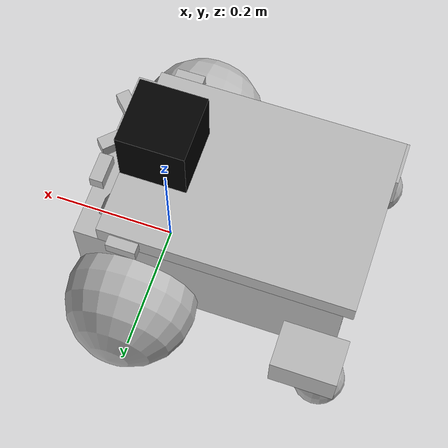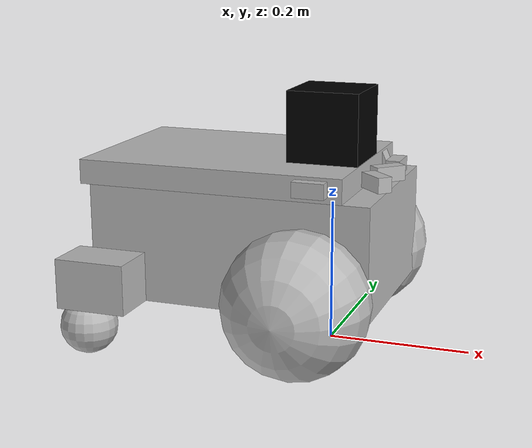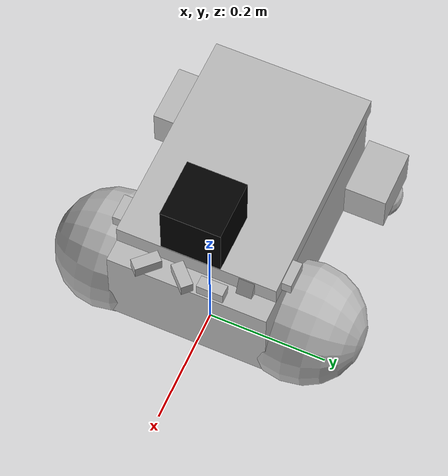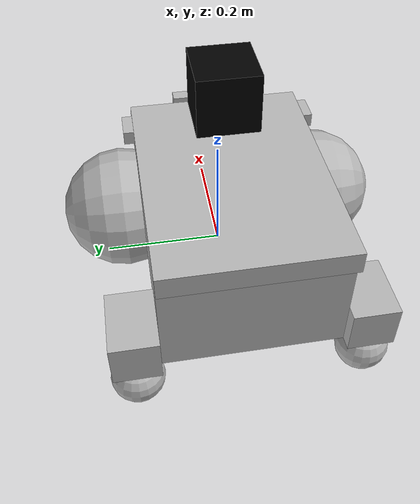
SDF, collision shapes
<?xml version='1.0'?>
<sdf version='1.7'>
  <model name='TinyBot_camera_friction'>
    <link name='base_footprint'>
      <pose>0 0 0 0 -0 0</pose>
      <inertial>
        <pose>-0.15 0 0.13 0 -0 0</pose>
        <mass>7</mass>
        <inertia>
          <ixx>0.0594508</ixx>
          <ixy>0</ixy>
          <ixz>-2.77556e-17</ixz>
          <iyy>0.150753</iyy>
          <iyz>0</iyz>
          <izz>0.172704</izz>
        </inertia>
      </inertial>
      <velocity_decay/>
      <velocity_decay/>
      <velocity_decay/>
      <velocity_decay/>
      <self_collide>0</self_collide>
      <enable_wind>0</enable_wind>
      <kinematic>0</kinematic>
      <visual name='base_footprint_fixed_joint_lump__base_link_visual_2'>
        <pose>-0.279 -0.17 0.09 0 -0 -3.14159</pose>
        <geometry>
          <mesh>
            <scale>1 1 1</scale>
            <uri>https://fuel.ignitionrobotics.org/1.0/openrobotics/models/tinybot/1/files/meshes/caster_wheel.dae</uri>
          </mesh>
        </geometry>
        <material>
          <shader type='pixel'/>
          <emissive>0 0 0 1</emissive>
        </material>
        <transparency>0</transparency>
        <cast_shadows>1</cast_shadows>
      </visual>
      <visual name='base_footprint_fixed_joint_lump__base_link_visual_1'>
        <pose>-0.279 0.17 0.09 0 -0 -3.14159</pose>
        <geometry>
          <mesh>
            <scale>1 1 1</scale>
            <uri>https://fuel.ignitionrobotics.org/1.0/openrobotics/models/tinybot/1/files/meshes/caster_wheel.dae</uri>
          </mesh>
        </geometry>
        <material>
          <shader type='pixel'/>
          <emissive>0 0 0 1</emissive>
        </material>
        <transparency>0</transparency>
        <cast_shadows>1</cast_shadows>
      </visual>
      <visual name='base_footprint_fixed_joint_lump__base_link_visual'>
        <pose>-0.11 0 0.071 0 -0 0</pose>
        <geometry>
          <mesh>
            <scale>1 1 1</scale>
            <uri>https://fuel.ignitionrobotics.org/1.0/openrobotics/models/tinybot/1/files/meshes/TinyBot_body.dae</uri>
          </mesh>
        </geometry>
        <material>
          <shader type='pixel'/>
          <emissive>0 0 0 1</emissive>
        </material>
        <transparency>0</transparency>
        <cast_shadows>1</cast_shadows>
      </visual>
      <collision name='base_footprint_fixed_joint_lump__left_caster_wheel_collision_4'>
        <laser_retro>0</laser_retro>
        <max_contacts>10</max_contacts>
        <pose>-0.3 0.169 0.04 0 -0 0</pose>
        <geometry>
          <sphere>
            <radius>0.04</radius>
          </sphere>
        </geometry>
        <surface>
          <friction>
            <ode>
              <mu>0</mu>
              <mu2>0</mu2>
              <fdir1>0 0 0</fdir1>
              <slip1>0</slip1>
              <slip2>0</slip2>
            </ode>
            <torsional>
              <coefficient>1</coefficient>
              <patch_radius>0</patch_radius>
              <surface_radius>0</surface_radius>
              <use_patch_radius>1</use_patch_radius>
              <ode>
                <slip>0</slip>
              </ode>
            </torsional>
          </friction>
          <bounce>
            <restitution_coefficient>0</restitution_coefficient>
            <threshold>1e+06</threshold>
          </bounce>
          <contact>
            <collide_without_contact>0</collide_without_contact>
            <collide_without_contact_bitmask>1</collide_without_contact_bitmask>
            <collide_bitmask>1</collide_bitmask>
            <ode>
              <soft_cfm>0</soft_cfm>
              <soft_erp>0.2</soft_erp>
              <kp>1e+08</kp>
              <kd>1</kd>
              <max_vel>0.01</max_vel>
              <min_depth>0.005</min_depth>
            </ode>
            <bullet>
              <split_impulse>1</split_impulse>
              <split_impulse_penetration_threshold>-0.01</split_impulse_penetration_threshold>
              <soft_cfm>0</soft_cfm>
              <soft_erp>0.2</soft_erp>
              <kp>1e+08</kp>
              <kd>1</kd>
            </bullet>
          </contact>
        </surface>
      </collision>
      <collision name='base_footprint_fixed_joint_lump__sonar_3_collision_10'>
        <laser_retro>0</laser_retro>
        <max_contacts>10</max_contacts>
        <pose>0.08 0.04 0.25 0 -0 0</pose>
        <geometry>
          <box>
            <size>0.02 0.044 0.021</size>
          </box>
        </geometry>
        <surface>
          <friction>
            <ode>
              <mu>1</mu>
              <mu2>1</mu2>
              <fdir1>0 0 0</fdir1>
              <slip1>0</slip1>
              <slip2>0</slip2>
            </ode>
            <torsional>
              <coefficient>1</coefficient>
              <patch_radius>0</patch_radius>
              <surface_radius>0</surface_radius>
              <use_patch_radius>1</use_patch_radius>
              <ode>
                <slip>0</slip>
              </ode>
            </torsional>
          </friction>
          <bounce>
            <restitution_coefficient>0</restitution_coefficient>
            <threshold>1e+06</threshold>
          </bounce>
          <contact>
            <collide_without_contact>0</collide_without_contact>
            <collide_without_contact_bitmask>1</collide_without_contact_bitmask>
            <collide_bitmask>1</collide_bitmask>
            <ode>
              <soft_cfm>0</soft_cfm>
              <soft_erp>0.2</soft_erp>
              <kp>1e+13</kp>
              <kd>1</kd>
              <max_vel>0.01</max_vel>
              <min_depth>0</min_depth>
            </ode>
            <bullet>
              <split_impulse>1</split_impulse>
              <split_impulse_penetration_threshold>-0.01</split_impulse_penetration_threshold>
              <soft_cfm>0</soft_cfm>
              <soft_erp>0.2</soft_erp>
              <kp>1e+13</kp>
              <kd>1</kd>
            </bullet>
          </contact>
        </surface>
      </collision>
      <collision name='base_footprint_fixed_joint_lump__sonar_2_collision_9'>
        <laser_retro>0</laser_retro>
        <max_contacts>10</max_contacts>
        <pose>0.08 -0.01 0.25 0 0 -0.785</pose>
        <geometry>
          <box>
            <size>0.02 0.044 0.021</size>
          </box>
        </geometry>
        <surface>
          <friction>
            <ode>
              <mu>1</mu>
              <mu2>1</mu2>
              <fdir1>0 0 0</fdir1>
              <slip1>0</slip1>
              <slip2>0</slip2>
            </ode>
            <torsional>
              <coefficient>1</coefficient>
              <patch_radius>0</patch_radius>
              <surface_radius>0</surface_radius>
              <use_patch_radius>1</use_patch_radius>
              <ode>
                <slip>0</slip>
              </ode>
            </torsional>
          </friction>
          <bounce>
            <restitution_coefficient>0</restitution_coefficient>
            <threshold>1e+06</threshold>
          </bounce>
          <contact>
            <collide_without_contact>0</collide_without_contact>
            <collide_without_contact_bitmask>1</collide_without_contact_bitmask>
            <collide_bitmask>1</collide_bitmask>
            <ode>
              <soft_cfm>0</soft_cfm>
              <soft_erp>0.2</soft_erp>
              <kp>1e+13</kp>
              <kd>1</kd>
              <max_vel>0.01</max_vel>
              <min_depth>0</min_depth>
            </ode>
            <bullet>
              <split_impulse>1</split_impulse>
              <split_impulse_penetration_threshold>-0.01</split_impulse_penetration_threshold>
              <soft_cfm>0</soft_cfm>
              <soft_erp>0.2</soft_erp>
              <kp>1e+13</kp>
              <kd>1</kd>
            </bullet>
          </contact>
        </surface>
      </collision>
      <collision name='base_footprint_fixed_joint_lump__base_link_collision'>
        <laser_retro>0</laser_retro>
        <max_contacts>10</max_contacts>
        <pose>-0.11 0 0.151 0 -0 0</pose>
        <geometry>
          <box>
            <size>0.398 0.268 0.16</size>
          </box>
        </geometry>
        <surface>
          <friction>
            <ode>
              <mu>1</mu>
              <mu2>1</mu2>
              <fdir1>0 0 0</fdir1>
              <slip1>0</slip1>
              <slip2>0</slip2>
            </ode>
            <torsional>
              <coefficient>1</coefficient>
              <patch_radius>0</patch_radius>
              <surface_radius>0</surface_radius>
              <use_patch_radius>1</use_patch_radius>
              <ode>
                <slip>0</slip>
              </ode>
            </torsional>
          </friction>
          <bounce>
            <restitution_coefficient>0</restitution_coefficient>
            <threshold>1e+06</threshold>
          </bounce>
          <contact>
            <collide_without_contact>0</collide_without_contact>
            <collide_without_contact_bitmask>1</collide_without_contact_bitmask>
            <collide_bitmask>1</collide_bitmask>
            <ode>
              <soft_cfm>0</soft_cfm>
              <soft_erp>0.2</soft_erp>
              <kp>1e+13</kp>
              <kd>1</kd>
              <max_vel>0.01</max_vel>
              <min_depth>0</min_depth>
            </ode>
            <bullet>
              <split_impulse>1</split_impulse>
              <split_impulse_penetration_threshold>-0.01</split_impulse_penetration_threshold>
              <soft_cfm>0</soft_cfm>
              <soft_erp>0.2</soft_erp>
              <kp>1e+13</kp>
              <kd>1</kd>
            </bullet>
          </contact>
        </surface>
      </collision>
      <collision name='base_footprint_fixed_joint_lump__base_link_collision_2'>
        <laser_retro>0</laser_retro>
        <max_contacts>10</max_contacts>
        <pose>-0.279 0.169 0.106 0 -0 0</pose>
        <geometry>
          <box>
            <size>0.1 0.07 0.07</size>
          </box>
        </geometry>
        <surface>
          <friction>
            <ode>
              <mu>1</mu>
              <mu2>1</mu2>
              <fdir1>0 0 0</fdir1>
              <slip1>0</slip1>
              <slip2>0</slip2>
            </ode>
            <torsional>
              <coefficient>1</coefficient>
              <patch_radius>0</patch_radius>
              <surface_radius>0</surface_radius>
              <use_patch_radius>1</use_patch_radius>
              <ode>
                <slip>0</slip>
              </ode>
            </torsional>
          </friction>
          <bounce>
            <restitution_coefficient>0</restitution_coefficient>
            <threshold>1e+06</threshold>
          </bounce>
          <contact>
            <collide_without_contact>0</collide_without_contact>
            <collide_without_contact_bitmask>1</collide_without_contact_bitmask>
            <collide_bitmask>1</collide_bitmask>
            <ode>
              <soft_cfm>0</soft_cfm>
              <soft_erp>0.2</soft_erp>
              <kp>1e+13</kp>
              <kd>1</kd>
              <max_vel>0.01</max_vel>
              <min_depth>0</min_depth>
            </ode>
            <bullet>
              <split_impulse>1</split_impulse>
              <split_impulse_penetration_threshold>-0.01</split_impulse_penetration_threshold>
              <soft_cfm>0</soft_cfm>
              <soft_erp>0.2</soft_erp>
              <kp>1e+13</kp>
              <kd>1</kd>
            </bullet>
          </contact>
        </surface>
      </collision>
      <collision name='base_footprint_fixed_joint_lump__sonar_0_collision_7'>
        <laser_retro>0</laser_retro>
        <max_contacts>10</max_contacts>
        <pose>0.01 -0.14 0.25 0 0 -1.5708</pose>
        <geometry>
          <box>
            <size>0.02 0.044 0.021</size>
          </box>
        </geometry>
        <surface>
          <friction>
            <ode>
              <mu>1</mu>
              <mu2>1</mu2>
              <fdir1>0 0 0</fdir1>
              <slip1>0</slip1>
              <slip2>0</slip2>
            </ode>
            <torsional>
              <coefficient>1</coefficient>
              <patch_radius>0</patch_radius>
              <surface_radius>0</surface_radius>
              <use_patch_radius>1</use_patch_radius>
              <ode>
                <slip>0</slip>
              </ode>
            </torsional>
          </friction>
          <bounce>
            <restitution_coefficient>0</restitution_coefficient>
            <threshold>1e+06</threshold>
          </bounce>
          <contact>
            <collide_without_contact>0</collide_without_contact>
            <collide_without_contact_bitmask>1</collide_without_contact_bitmask>
            <collide_bitmask>1</collide_bitmask>
            <ode>
              <soft_cfm>0</soft_cfm>
              <soft_erp>0.2</soft_erp>
              <kp>1e+13</kp>
              <kd>1</kd>
              <max_vel>0.01</max_vel>
              <min_depth>0</min_depth>
            </ode>
            <bullet>
              <split_impulse>1</split_impulse>
              <split_impulse_penetration_threshold>-0.01</split_impulse_penetration_threshold>
              <soft_cfm>0</soft_cfm>
              <soft_erp>0.2</soft_erp>
              <kp>1e+13</kp>
              <kd>1</kd>
            </bullet>
          </contact>
        </surface>
      </collision>
      <collision name='base_footprint_fixed_joint_lump__right_caster_wheel_collision_6'>
        <laser_retro>0</laser_retro>
        <max_contacts>10</max_contacts>
        <pose>-0.3 -0.169 0.04 0 -0 0</pose>
        <geometry>
          <sphere>
            <radius>0.04</radius>
          </sphere>
        </geometry>
        <surface>
          <friction>
            <ode>
              <mu>0</mu>
              <mu2>0</mu2>
              <fdir1>0 0 0</fdir1>
              <slip1>0</slip1>
              <slip2>0</slip2>
            </ode>
            <torsional>
              <coefficient>1</coefficient>
              <patch_radius>0</patch_radius>
              <surface_radius>0</surface_radius>
              <use_patch_radius>1</use_patch_radius>
              <ode>
                <slip>0</slip>
              </ode>
            </torsional>
          </friction>
          <bounce>
            <restitution_coefficient>0</restitution_coefficient>
            <threshold>1e+06</threshold>
          </bounce>
          <contact>
            <collide_without_contact>0</collide_without_contact>
            <collide_without_contact_bitmask>1</collide_without_contact_bitmask>
            <collide_bitmask>1</collide_bitmask>
            <ode>
              <soft_cfm>0</soft_cfm>
              <soft_erp>0.2</soft_erp>
              <kp>1e+08</kp>
              <kd>1</kd>
              <max_vel>0.01</max_vel>
              <min_depth>0.005</min_depth>
            </ode>
            <bullet>
              <split_impulse>1</split_impulse>
              <split_impulse_penetration_threshold>-0.01</split_impulse_penetration_threshold>
              <soft_cfm>0</soft_cfm>
              <soft_erp>0.2</soft_erp>
              <kp>1e+08</kp>
              <kd>1</kd>
            </bullet>
          </contact>
        </surface>
      </collision>
      <collision name='base_footprint_fixed_joint_lump__base_link_collision_1'>
        <laser_retro>0</laser_retro>
        <max_contacts>10</max_contacts>
        <pose>-0.136 0 0.248 0 -0 0</pose>
        <geometry>
          <box>
            <size>0.375 0.268 0.034</size>
          </box>
        </geometry>
        <surface>
          <friction>
            <ode>
              <mu>1</mu>
              <mu2>1</mu2>
              <fdir1>0 0 0</fdir1>
              <slip1>0</slip1>
              <slip2>0</slip2>
            </ode>
            <torsional>
              <coefficient>1</coefficient>
              <patch_radius>0</patch_radius>
              <surface_radius>0</surface_radius>
              <use_patch_radius>1</use_patch_radius>
              <ode>
                <slip>0</slip>
              </ode>
            </torsional>
          </friction>
          <bounce>
            <restitution_coefficient>0</restitution_coefficient>
            <threshold>1e+06</threshold>
          </bounce>
          <contact>
            <collide_without_contact>0</collide_without_contact>
            <collide_without_contact_bitmask>1</collide_without_contact_bitmask>
            <collide_bitmask>1</collide_bitmask>
            <ode>
              <soft_cfm>0</soft_cfm>
              <soft_erp>0.2</soft_erp>
              <kp>1e+13</kp>
              <kd>1</kd>
              <max_vel>0.01</max_vel>
              <min_depth>0</min_depth>
            </ode>
            <bullet>
              <split_impulse>1</split_impulse>
              <split_impulse_penetration_threshold>-0.01</split_impulse_penetration_threshold>
              <soft_cfm>0</soft_cfm>
              <soft_erp>0.2</soft_erp>
              <kp>1e+13</kp>
              <kd>1</kd>
            </bullet>
          </contact>
        </surface>
      </collision>
      <collision name='base_footprint_fixed_joint_lump__sonar_4_collision_11'>
        <laser_retro>0</laser_retro>
        <max_contacts>10</max_contacts>
        <pose>0.01 0.14 0.25 0 -0 1.5708</pose>
        <geometry>
          <box>
            <size>0.02 0.044 0.021</size>
          </box>
        </geometry>
        <surface>
          <friction>
            <ode>
              <mu>1</mu>
              <mu2>1</mu2>
              <fdir1>0 0 0</fdir1>
              <slip1>0</slip1>
              <slip2>0</slip2>
            </ode>
            <torsional>
              <coefficient>1</coefficient>
              <patch_radius>0</patch_radius>
              <surface_radius>0</surface_radius>
              <use_patch_radius>1</use_patch_radius>
              <ode>
                <slip>0</slip>
              </ode>
            </torsional>
          </friction>
          <bounce>
            <restitution_coefficient>0</restitution_coefficient>
            <threshold>1e+06</threshold>
          </bounce>
          <contact>
            <collide_without_contact>0</collide_without_contact>
            <collide_without_contact_bitmask>1</collide_without_contact_bitmask>
            <collide_bitmask>1</collide_bitmask>
            <ode>
              <soft_cfm>0</soft_cfm>
              <soft_erp>0.2</soft_erp>
              <kp>1e+13</kp>
              <kd>1</kd>
              <max_vel>0.01</max_vel>
              <min_depth>0</min_depth>
            </ode>
            <bullet>
              <split_impulse>1</split_impulse>
              <split_impulse_penetration_threshold>-0.01</split_impulse_penetration_threshold>
              <soft_cfm>0</soft_cfm>
              <soft_erp>0.2</soft_erp>
              <kp>1e+13</kp>
              <kd>1</kd>
            </bullet>
          </contact>
        </surface>
      </collision>
      <collision name='base_footprint_fixed_joint_lump__base_link_collision_3'>
        <laser_retro>0</laser_retro>
        <max_contacts>10</max_contacts>
        <pose>-0.279 -0.169 0.106 0 -0 0</pose>
        <geometry>
          <box>
            <size>0.1 0.07 0.07</size>
          </box>
        </geometry>
        <surface>
          <friction>
            <ode>
              <mu>1</mu>
              <mu2>1</mu2>
              <fdir1>0 0 0</fdir1>
              <slip1>0</slip1>
              <slip2>0</slip2>
            </ode>
            <torsional>
              <coefficient>1</coefficient>
              <patch_radius>0</patch_radius>
              <surface_radius>0</surface_radius>
              <use_patch_radius>1</use_patch_radius>
              <ode>
                <slip>0</slip>
              </ode>
            </torsional>
          </friction>
          <bounce>
            <restitution_coefficient>0</restitution_coefficient>
            <threshold>1e+06</threshold>
          </bounce>
          <contact>
            <collide_without_contact>0</collide_without_contact>
            <collide_without_contact_bitmask>1</collide_without_contact_bitmask>
            <collide_bitmask>1</collide_bitmask>
            <ode>
              <soft_cfm>0</soft_cfm>
              <soft_erp>0.2</soft_erp>
              <kp>1e+13</kp>
              <kd>1</kd>
              <max_vel>0.01</max_vel>
              <min_depth>0</min_depth>
            </ode>
            <bullet>
              <split_impulse>1</split_impulse>
              <split_impulse_penetration_threshold>-0.01</split_impulse_penetration_threshold>
              <soft_cfm>0</soft_cfm>
              <soft_erp>0.2</soft_erp>
              <kp>1e+13</kp>
              <kd>1</kd>
            </bullet>
          </contact>
        </surface>
      </collision>
      <collision name='base_footprint_fixed_joint_lump__sonar_1_collision_8'>
        <laser_retro>0</laser_retro>
        <max_contacts>10</max_contacts>
        <pose>0.08 -0.07 0.25 0 -0 0.785</pose>
        <geometry>
          <box>
            <size>0.02 0.044 0.021</size>
          </box>
        </geometry>
        <surface>
          <friction>
            <ode>
              <mu>1</mu>
              <mu2>1</mu2>
              <fdir1>0 0 0</fdir1>
              <slip1>0</slip1>
              <slip2>0</slip2>
            </ode>
            <torsional>
              <coefficient>1</coefficient>
              <patch_radius>0</patch_radius>
              <surface_radius>0</surface_radius>
              <use_patch_radius>1</use_patch_radius>
              <ode>
                <slip>0</slip>
              </ode>
            </torsional>
          </friction>
          <bounce>
            <restitution_coefficient>0</restitution_coefficient>
            <threshold>1e+06</threshold>
          </bounce>
          <contact>
            <collide_without_contact>0</collide_without_contact>
            <collide_without_contact_bitmask>1</collide_without_contact_bitmask>
            <collide_bitmask>1</collide_bitmask>
            <ode>
              <soft_cfm>0</soft_cfm>
              <soft_erp>0.2</soft_erp>
              <kp>1e+13</kp>
              <kd>1</kd>
              <max_vel>0.01</max_vel>
              <min_depth>0</min_depth>
            </ode>
            <bullet>
              <split_impulse>1</split_impulse>
              <split_impulse_penetration_threshold>-0.01</split_impulse_penetration_threshold>
              <soft_cfm>0</soft_cfm>
              <soft_erp>0.2</soft_erp>
              <kp>1e+13</kp>
              <kd>1</kd>
            </bullet>
          </contact>
        </surface>
      </collision>
      <collision name='base_footprint_fixed_joint_lump__raspicam_collision_5'>
        <laser_retro>0</laser_retro>
        <max_contacts>10</max_contacts>
        <pose>0.05 0.085 0.245 0 -1.15192 3.1415</pose>
        <geometry>
          <box>
            <size>0.03 0.026 0.016</size>
          </box>
        </geometry>
        <surface>
          <friction>
            <ode>
              <mu>1</mu>
              <mu2>1</mu2>
              <fdir1>0 0 0</fdir1>
              <slip1>0</slip1>
              <slip2>0</slip2>
            </ode>
            <torsional>
              <coefficient>1</coefficient>
              <patch_radius>0</patch_radius>
              <surface_radius>0</surface_radius>
              <use_patch_radius>1</use_patch_radius>
              <ode>
                <slip>0</slip>
              </ode>
            </torsional>
          </friction>
          <bounce>
            <restitution_coefficient>0</restitution_coefficient>
            <threshold>1e+06</threshold>
          </bounce>
          <contact>
            <collide_without_contact>0</collide_without_contact>
            <collide_without_contact_bitmask>1</collide_without_contact_bitmask>
            <collide_bitmask>1</collide_bitmask>
            <ode>
              <soft_cfm>0</soft_cfm>
              <soft_erp>0.2</soft_erp>
              <kp>1e+13</kp>
              <kd>1</kd>
              <max_vel>0.01</max_vel>
              <min_depth>0</min_depth>
            </ode>
            <bullet>
              <split_impulse>1</split_impulse>
              <split_impulse_penetration_threshold>-0.01</split_impulse_penetration_threshold>
              <soft_cfm>0</soft_cfm>
              <soft_erp>0.2</soft_erp>
              <kp>1e+13</kp>
              <kd>1</kd>
            </bullet>
          </contact>
        </surface>
      </collision>
    </link>
    <link name='left_wheel'>
      <pose>-0 0.163 0.1 0 -0 1.5708</pose>
      <inertial>
        <pose>0 0 0 3.14159 1.57079 3.14159</pose>
        <mass>3.34</mass>
        <inertia>
          <ixx>0.00904583</ixx>
          <ixy>0</ixy>
          <ixz>0</ixz>
          <iyy>0.00904583</iyy>
          <iyz>0</iyz>
          <izz>0.0167</izz>
        </inertia>
      </inertial>
      <gravity>1</gravity>
      <velocity_decay/>
      <self_collide>0</self_collide>
      <enable_wind>0</enable_wind>
      <kinematic>0</kinematic>
      <visual name='left_wheel_visual'>
        <pose>-0.071 0 0 0 -0 0</pose>
        <geometry>
          <mesh>
            <scale>1 1 1</scale>
            <uri>https://fuel.ignitionrobotics.org/1.0/openrobotics/models/tinybot/1/files/meshes/front_wheel.dae</uri>
          </mesh>
        </geometry>
        <material>
          <shader type='pixel'/>
          <emissive>0 0 0 1</emissive>
        </material>
        <transparency>0</transparency>
        <cast_shadows>1</cast_shadows>
      </visual>
      <collision name='left_wheel_collision'>
        <laser_retro>0</laser_retro>
        <max_contacts>10</max_contacts>
        <pose>0 0 0 3.14159 1.57079 3.14159</pose>
        <geometry>
          <sphere>
            <radius>0.1</radius>
          </sphere>
        </geometry>
        <surface>
          <friction>
            <ode>
              <mu>1</mu>
              <mu2>1</mu2>
              <fdir1>0 0 1</fdir1>
              <slip1>0</slip1>
              <slip2>0</slip2>
            </ode>
            <torsional>
              <coefficient>1</coefficient>
              <patch_radius>0</patch_radius>
              <surface_radius>0</surface_radius>
              <use_patch_radius>1</use_patch_radius>
              <ode>
                <slip>0</slip>
              </ode>
            </torsional>
          </friction>
          <bounce>
            <restitution_coefficient>0</restitution_coefficient>
            <threshold>1e+06</threshold>
          </bounce>
          <contact>
            <collide_without_contact>0</collide_without_contact>
            <collide_without_contact_bitmask>1</collide_without_contact_bitmask>
            <collide_bitmask>1</collide_bitmask>
            <ode>
              <soft_cfm>0</soft_cfm>
              <soft_erp>0.2</soft_erp>
              <kp>1e+07</kp>
              <kd>1</kd>
              <max_vel>0.01</max_vel>
              <min_depth>0</min_depth>
            </ode>
            <bullet>
              <split_impulse>1</split_impulse>
              <split_impulse_penetration_threshold>-0.01</split_impulse_penetration_threshold>
              <soft_cfm>0</soft_cfm>
              <soft_erp>0.2</soft_erp>
              <kp>1e+07</kp>
              <kd>1</kd>
            </bullet>
          </contact>
        </surface>
      </collision>
    </link>
    <link name='right_wheel'>
      <pose>1e-06 -0.163 0.1 0 -0 1.5708</pose>
      <inertial>
        <pose>0 0 0 3.14159 1.57079 3.14159</pose>
        <mass>3.34</mass>
        <inertia>
          <ixx>0.00904583</ixx>
          <ixy>0</ixy>
          <ixz>0</ixz>
          <iyy>0.00904583</iyy>
          <iyz>0</iyz>
          <izz>0.0167</izz>
        </inertia>
      </inertial>
      <gravity>1</gravity>
      <velocity_decay/>
      <self_collide>0</self_collide>
      <enable_wind>0</enable_wind>
      <kinematic>0</kinematic>
      <visual name='right_wheel_visual'>
        <pose>0.071 0 0 -3.14159 -0 -3.14159</pose>
        <geometry>
          <mesh>
            <scale>1 1 1</scale>
            <uri>https://fuel.ignitionrobotics.org/1.0/openrobotics/models/tinybot/1/files/meshes/front_wheel.dae</uri>
          </mesh>
        </geometry>
        <material>
          <shader type='pixel'/>
        </material>
        <transparency>0</transparency>
        <cast_shadows>1</cast_shadows>
      </visual>
      <collision name='right_wheel_collision'>
        <laser_retro>0</laser_retro>
        <max_contacts>10</max_contacts>
        <pose>0 0 0 3.14159 1.57079 3.14159</pose>
        <geometry>
          <sphere>
            <radius>0.1</radius>
          </sphere>
        </geometry>
        <surface>
          <friction>
            <ode>
              <mu>1</mu>
              <mu2>1</mu2>
              <fdir1>0 0 1</fdir1>
              <slip1>0</slip1>
              <slip2>0</slip2>
            </ode>
            <torsional>
              <coefficient>1</coefficient>
              <patch_radius>0</patch_radius>
              <surface_radius>0</surface_radius>
              <use_patch_radius>1</use_patch_radius>
              <ode>
                <slip>0</slip>
              </ode>
            </torsional>
          </friction>
          <bounce>
            <restitution_coefficient>0</restitution_coefficient>
            <threshold>1e+06</threshold>
          </bounce>
          <contact>
            <collide_without_contact>0</collide_without_contact>
            <collide_without_contact_bitmask>1</collide_without_contact_bitmask>
            <collide_bitmask>1</collide_bitmask>
            <ode>
              <soft_cfm>0</soft_cfm>
              <soft_erp>0.2</soft_erp>
              <kp>1e+07</kp>
              <kd>1</kd>
              <max_vel>0.01</max_vel>
              <min_depth>0</min_depth>
            </ode>
            <bullet>
              <split_impulse>1</split_impulse>
              <split_impulse_penetration_threshold>-0.01</split_impulse_penetration_threshold>
              <soft_cfm>0</soft_cfm>
              <soft_erp>0.2</soft_erp>
              <kp>1e+07</kp>
              <kd>1</kd>
            </bullet>
          </contact>
        </surface>
      </collision>
    </link>
    <model name='camera_ros'>
      <link name='link'>
        <inertial>
          <mass>0.1</mass>
          <inertia>
            <ixx>0.00016667</ixx>
            <iyy>0.00016667</iyy>
            <izz>0.00016667</izz>
            <ixy>0</ixy>
            <ixz>0</ixz>
            <iyz>0</iyz>
          </inertia>
          <pose>0 0 0 0 -0 0</pose>
        </inertial>
        <sensor name='camera' type='camera'>
          <camera>
            <horizontal_fov>1.047</horizontal_fov>
            <image>
              <width>320</width>
              <height>240</height>
            </image>
            <clip>
              <near>0.1</near>
              <far>100</far>
            </clip>
          </camera>
          <always_on>1</always_on>
          <update_rate>30</update_rate>
          <visualize>1</visualize>
          <plugin name='camera_controller' filename='libgazebo_ros_camera.so'>
            <alwaysOn>1</alwaysOn>
            <updateRate>0.0</updateRate>
            <cameraName>camera1_ros</cameraName>
            <imageTopicName>image_raw</imageTopicName>
            <cameraInfoTopicName>camera_info</cameraInfoTopicName>
            <frameName>camera_link</frameName>
            <hackBaseline>0.07</hackBaseline>
            <distortionK1>0.0</distortionK1>
            <distortionK2>0.0</distortionK2>
            <distortionK3>0.0</distortionK3>
            <distortionT1>0.0</distortionT1>
            <distortionT2>0.0</distortionT2>
          </plugin>
        </sensor>
        <self_collide>0</self_collide>
        <enable_wind>0</enable_wind>
        <kinematic>0</kinematic>
        <pose>0 0 0 0 -0 0</pose>
        <gravity>1</gravity>
        <visual name='visual'>
          <geometry>
            <box>
              <size>0.1 0.1 0.1</size>
            </box>
          </geometry>
          <material>
            <shader type='pixel'>
              <normal_map>__default__</normal_map>
            </shader>
            <script>
              <name>ModelPreview_4::link::visual_MATERIAL_</name>
              <uri>__default__</uri>
            </script>
            <ambient>1 0 0 0</ambient>
            <diffuse>0 0 0 1</diffuse>
            <specular>0 0 0 1</specular>
            <emissive>0 0 0 1</emissive>
          </material>
          <pose>0 0 0 0 -0 0</pose>
          <transparency>0</transparency>
          <cast_shadows>1</cast_shadows>
        </visual>
        <collision name='collision'>
          <laser_retro>0</laser_retro>
          <max_contacts>10</max_contacts>
          <pose>0 0 0 0 -0 0</pose>
          <geometry>
            <box>
              <size>0.1 0.1 0.1</size>
            </box>
          </geometry>
          <surface>
            <friction>
              <ode>
                <mu>1</mu>
                <mu2>1</mu2>
                <fdir1>0 0 0</fdir1>
                <slip1>0</slip1>
                <slip2>0</slip2>
              </ode>
              <torsional>
                <coefficient>1</coefficient>
                <patch_radius>0</patch_radius>
                <surface_radius>0</surface_radius>
                <use_patch_radius>1</use_patch_radius>
                <ode>
                  <slip>0</slip>
                </ode>
              </torsional>
            </friction>
            <bounce>
              <restitution_coefficient>0</restitution_coefficient>
              <threshold>1e+06</threshold>
            </bounce>
            <contact>
              <collide_without_contact>0</collide_without_contact>
              <collide_without_contact_bitmask>1</collide_without_contact_bitmask>
              <collide_bitmask>1</collide_bitmask>
              <ode>
                <soft_cfm>0</soft_cfm>
                <soft_erp>0.2</soft_erp>
                <kp>1e+13</kp>
                <kd>1</kd>
                <max_vel>0.01</max_vel>
                <min_depth>0</min_depth>
              </ode>
              <bullet>
                <split_impulse>1</split_impulse>
                <split_impulse_penetration_threshold>-0.01</split_impulse_penetration_threshold>
                <soft_cfm>0</soft_cfm>
                <soft_erp>0.2</soft_erp>
                <kp>1e+13</kp>
                <kd>1</kd>
              </bullet>
            </contact>
          </surface>
        </collision>
      </link>
      <static>0</static>
      <allow_auto_disable>1</allow_auto_disable>
      <pose>0.000721 -0.008848 0.312728 0 0 0</pose>
    </model>
    <joint name='joint_tire_left' type='revolute'>
      <parent>base_footprint</parent>
      <child>left_wheel</child>
      <pose>0 0 0 0 -0 0</pose>
      <axis>
        <xyz>1 -4e-06 0</xyz>
        <limit>
          <lower>-1e+16</lower>
          <upper>1e+16</upper>
          <effort>-1</effort>
          <velocity>-1</velocity>
        </limit>
        <dynamics>
          <spring_reference>0</spring_reference>
          <spring_stiffness>0</spring_stiffness>
          <damping>1</damping>
          <friction>1</friction>
        </dynamics>
      </axis>
      <physics>
        <ode>
          <limit>
            <cfm>0</cfm>
            <erp>0.2</erp>
          </limit>
          <suspension>
            <cfm>0</cfm>
            <erp>0.2</erp>
          </suspension>
        </ode>
      </physics>
    </joint>
    <joint name='joint_tire_right' type='revolute'>
      <parent>base_footprint</parent>
      <child>right_wheel</child>
      <pose>0 0 0 0 -0 0</pose>
      <axis>
        <xyz>1 -4e-06 0</xyz>
        <limit>
          <lower>-1e+16</lower>
          <upper>1e+16</upper>
          <effort>-1</effort>
          <velocity>-1</velocity>
        </limit>
        <dynamics>
          <spring_reference>0</spring_reference>
          <spring_stiffness>0</spring_stiffness>
          <damping>1</damping>
          <friction>1</friction>
        </dynamics>
      </axis>
      <physics>
        <ode>
          <limit>
            <cfm>0</cfm>
            <erp>0.2</erp>
          </limit>
          <suspension>
            <cfm>0</cfm>
            <erp>0.2</erp>
          </suspension>
        </ode>
      </physics>
    </joint>
    <joint name='link_JOINT_0' type='revolute'>
      <parent>base_footprint</parent>
      <child>camera_ros::link</child>
      <pose>0 0 0 0 -0 0</pose>
      <axis>
        <xyz>1 0 0</xyz>
        <limit>
          <lower>-1.79769e+308</lower>
          <upper>1.79769e+308</upper>
          <effort>-1</effort>
          <velocity>-1</velocity>
        </limit>
        <dynamics>
          <spring_reference>0</spring_reference>
          <spring_stiffness>0</spring_stiffness>
          <damping>0</damping>
          <friction>0</friction>
        </dynamics>
      </axis>
      <physics>
        <ode>
          <limit>
            <cfm>0</cfm>
            <erp>0.2</erp>
          </limit>
          <suspension>
            <cfm>0</cfm>
            <erp>0.2</erp>
          </suspension>
        </ode>
      </physics>
    </joint>
    <static>0</static>
    <allow_auto_disable>1</allow_auto_disable>
    <plugin name="libmove_plugin" filename="libmove_plugin.so">
    </plugin>
  </model>
</sdf>
